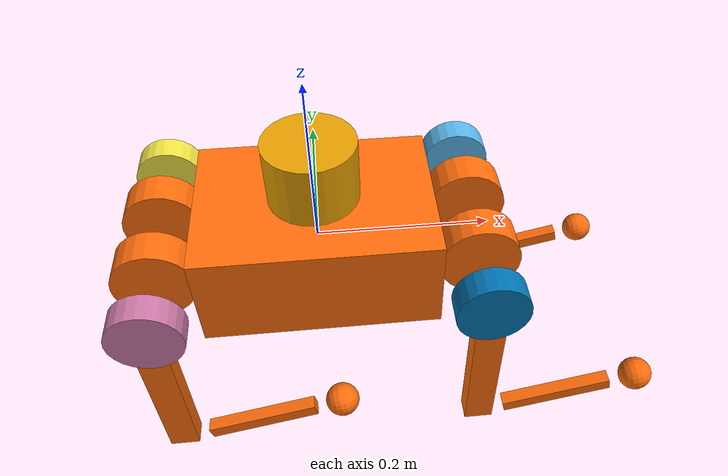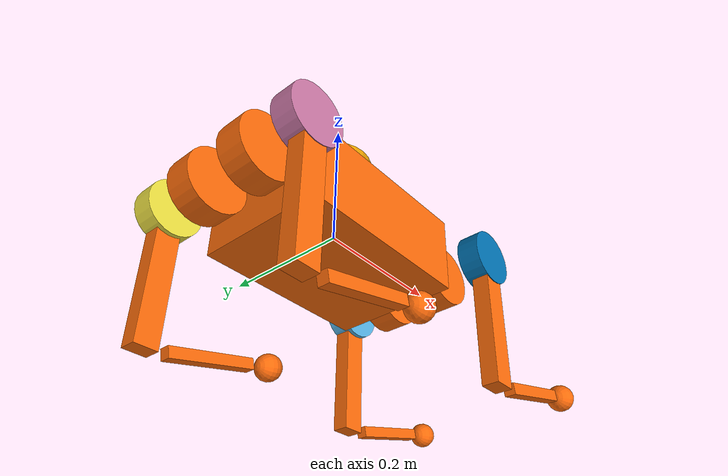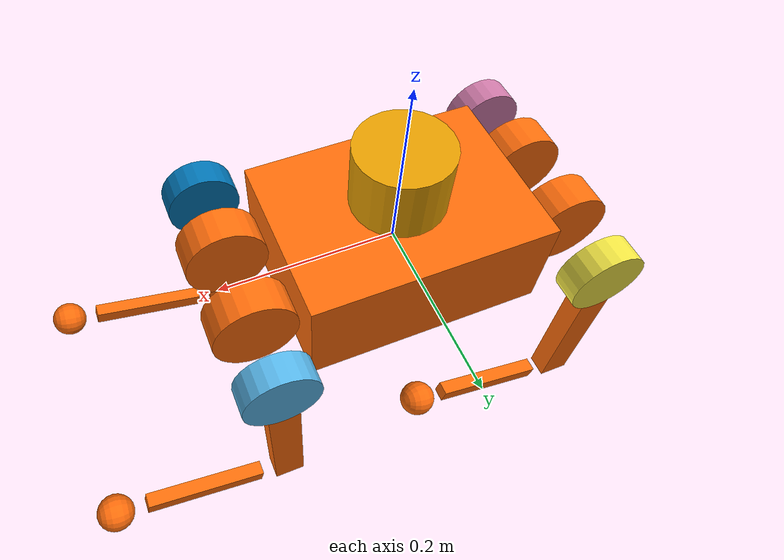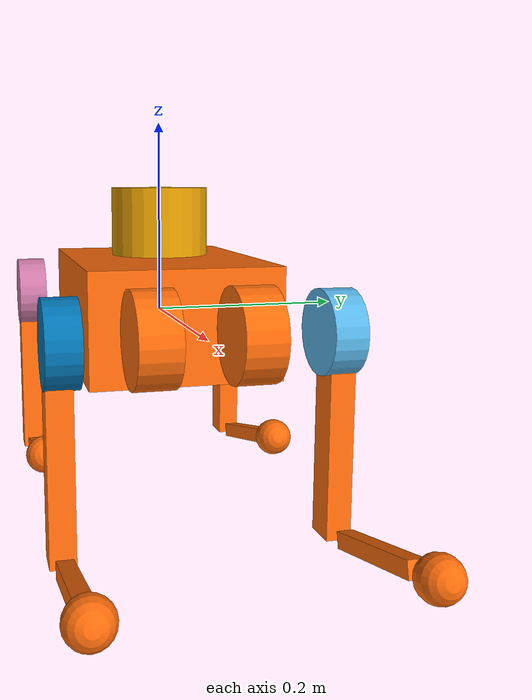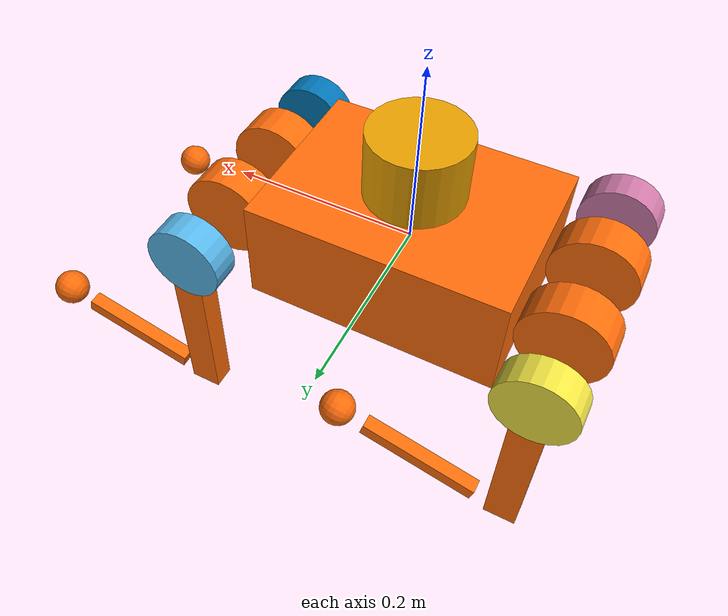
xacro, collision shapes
<?xml version="1.0"?>

<robot name="a1" xmlns:xacro="http://www.ros.org/wiki/xacro">

    <xacro:arg name="DEBUG" default="false"/>

    <xacro:include filename="$(find a1_description)/xacro/const.xacro"/>
    <xacro:include filename="$(find a1_description)/xacro/materials.xacro"/>
    <xacro:include filename="$(find a1_description)/xacro/leg.xacro"/>
    <xacro:include filename="$(find a1_description)/xacro/gazebo.xacro"/>

    <!-- Debug mode will hung up the robot, use "true" or "false" to switch it. -->
    <xacro:if value="$(arg DEBUG)">
        <link name="world"/>
        <joint name="base_static_joint" type="fixed">
            <origin rpy="0 0 0" xyz="0 0 0"/>
            <parent link="world"/>
            <child link="base_link"/>
        </joint>
    </xacro:if>

    <link name="base_link">
        <visual>
            <origin rpy="0 0 0" xyz="0 0 0"/>
            <geometry>
                <box size="0.001 0.001 0.001"/>
            </geometry>
        </visual>
    </link>

    <joint name="floating_base" type="fixed">
        <origin rpy="0 0 0" xyz="0 0 0"/>
        <parent link="base_link"/>
        <child link="trunk"/>
    </joint>

    <link name="trunk">
        <visual>
            <origin rpy="0 0 0" xyz="0 0 0"/>
            <geometry>
                <mesh filename="package://a1_description/meshes/trunk.dae" scale="1 1 1"/>
            </geometry>
            <material name="orange"/>
        </visual>
        <collision>
            <origin rpy="0 0 0" xyz="0 0 0"/>
            <geometry>
                <box size="${trunk_length} ${trunk_width} ${trunk_height}"/>
            </geometry>
        </collision>
        <inertial>
            <origin rpy="0 0 0" xyz="${trunk_com_x} ${trunk_com_y} ${trunk_com_z}"/>
            <mass value="${trunk_mass}"/>
            <inertia
                ixx="${trunk_ixx}" ixy="${trunk_ixy}" ixz="${trunk_ixz}"
                iyy="${trunk_iyy}" iyz="${trunk_iyz}"
                izz="${trunk_izz}"/>
        </inertial>
    </link>

    <joint name="imu_joint" type="fixed">
        <parent link="trunk"/>
        <child link="imu_link"/>
        <origin rpy="0 0 0" xyz="0 0 0"/>
    </joint>

    <link name="imu_link">
        <inertial>
            <mass value="0.001"/>
            <origin rpy="0 0 0" xyz="0 0 0"/>
            <inertia ixx="0.0001" ixy="0" ixz="0" iyy="0.0001" iyz="0" izz="0.0001"/>
        </inertial>
        <visual>
            <origin rpy="0 0 0" xyz="0 0 0"/>
            <geometry>
                <box size="0.001 0.001 0.001"/>
            </geometry>
            <material name="red"/>
        </visual>
        <collision>
            <origin rpy="0 0 0" xyz="0 0 0"/>
            <geometry>
                <box size=".001 .001 .001"/>
            </geometry>
        </collision>
    </link>

    <xacro:leg name="FR" mirror="-1" mirror_dae="False" front_hind="1" front_hind_dae="True">
        <origin rpy="0 0 0" xyz="${leg_offset_x} ${-leg_offset_y} 0"/>
    </xacro:leg>

    <xacro:leg name="FL" mirror="1" mirror_dae="True" front_hind="1" front_hind_dae="True">
        <origin rpy="0 0 0" xyz="${leg_offset_x} ${leg_offset_y} 0"/>
    </xacro:leg>

    <xacro:leg name="RR" mirror="-1" mirror_dae="False" front_hind="-1" front_hind_dae="False">
        <origin rpy="0 0 0" xyz="${-leg_offset_x} ${-leg_offset_y} 0"/>
    </xacro:leg>

    <xacro:leg name="RL" mirror="1" mirror_dae="True" front_hind="-1" front_hind_dae="False">
        <origin rpy="0 0 0" xyz="${-leg_offset_x} ${leg_offset_y} 0"/>
    </xacro:leg>

    <gazebo>
        <plugin name="p3d_base_controller" filename="libgazebo_ros_p3d.so">
            <alwaysOn>true</alwaysOn>
            <updateRate>50.0</updateRate>
            <bodyName>base_link</bodyName>
            <topicName>ground_truth/state</topicName>
            <gaussianNoise>0.01</gaussianNoise>
            <frameName>world</frameName>
            <xyzOffsets>0 0 0</xyzOffsets>
            <rpyOffsets>0 0 0</rpyOffsets>
        </plugin>
    </gazebo>

    <xacro:include filename="$(find a1_description)/xacro/SensorHeadForUnitreeA1.urdf.xacro"/>
	<xacro:sensor_head parent="base_link" name="Sensor_Head">
		<origin xyz="0.0 0 0.03" rpy="0 0 0" />
	</xacro:sensor_head>

</robot>

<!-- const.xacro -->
<robot name="a1_description" xmlns:xacro="http://www.ros.org/wiki/xacro">

    <!-- Constants for robot dimensions -->
    <xacro:property name="PI" value="3.1415926535897931"/>
    <xacro:property name="stick_mass" value="0.00001"/>

    <!-- simplified collision value -->
    <xacro:property name="trunk_width" value="0.194"/>
    <xacro:property name="trunk_length" value="0.267"/>
    <xacro:property name="trunk_height" value="0.114"/>
    <xacro:property name="hip_radius" value="0.046"/>
    <xacro:property name="hip_length" value="0.04"/>
    <xacro:property name="thigh_shoulder_radius" value="0.041"/>
    <xacro:property name="thigh_shoulder_length" value="0.032"/>
    <xacro:property name="thigh_width" value="0.0245"/>
    <xacro:property name="thigh_height" value="0.034"/>
    <xacro:property name="calf_width" value="0.016"/>
    <xacro:property name="calf_height" value="0.016"/>
    <xacro:property name="foot_radius" value="0.02"/>
    <xacro:property name="stick_radius" value="0.01"/>
    <xacro:property name="stick_length" value="0.2"/>

    <!-- kinematic value -->
    <xacro:property name="thigh_offset" value="0.0838"/>
    <xacro:property name="thigh_length" value="0.2"/>
    <xacro:property name="calf_length" value="0.2"/>

    <!-- leg offset from trunk center value -->
    <xacro:property name="leg_offset_x" value="0.1805"/>
    <xacro:property name="leg_offset_y" value="0.047"/>
    <xacro:property name="trunk_offset_z" value="0.01675"/>
    <xacro:property name="hip_offset" value="0.065"/>

    <!-- joint limits -->
    <xacro:property name="damping" value="0.3"/>
    <xacro:property name="friction" value="0.2"/>
    <xacro:property name="hip_max" value="46"/>
    <xacro:property name="hip_min" value="-46"/>
    <xacro:property name="hip_velocity_max" value="21"/>
    <xacro:property name="hip_torque_max" value="33.5"/>
    <xacro:property name="thigh_max" value="240"/>
    <xacro:property name="thigh_min" value="-60"/>
    <xacro:property name="thigh_velocity_max" value="21"/>
    <xacro:property name="thigh_torque_max" value="33.5"/>
    <xacro:property name="calf_max" value="-52.5"/>
    <xacro:property name="calf_min" value="-154.5"/>
    <xacro:property name="calf_velocity_max" value="21"/>
    <xacro:property name="calf_torque_max" value="33.5"/>

    <!-- dynamics inertial value -->
    <!-- trunk -->
    <xacro:property name="trunk_mass" value="6.0"/>
    <xacro:property name="trunk_com_x" value="0.0000"/>
    <xacro:property name="trunk_com_y" value="0.0041"/>
    <xacro:property name="trunk_com_z" value="-0.0005"/>
    <xacro:property name="trunk_ixx" value="0.0158533"/>
    <xacro:property name="trunk_ixy" value="-0.0000366"/>
    <xacro:property name="trunk_ixz" value="-0.0000611"/>
    <xacro:property name="trunk_iyy" value="0.0377999"/>
    <xacro:property name="trunk_iyz" value="-0.0000275"/>
    <xacro:property name="trunk_izz" value="0.0456542"/>

    <!-- hip (left front) -->
    <xacro:property name="hip_mass" value="0.696"/>
    <xacro:property name="hip_com_x" value="-0.003311"/>
    <xacro:property name="hip_com_y" value="0.000635"/>
    <xacro:property name="hip_com_z" value="0.000031"/>
    <xacro:property name="hip_ixx" value="0.000469246"/>
    <xacro:property name="hip_ixy" value="-0.000009409"/>
    <xacro:property name="hip_ixz" value="-0.000000342"/>
    <xacro:property name="hip_iyy" value="0.000807490"/>
    <xacro:property name="hip_iyz" value="-0.000000466"/>
    <xacro:property name="hip_izz" value="0.000552929"/>

    <!-- thigh -->
    <xacro:property name="thigh_mass" value="1.013"/>
    <xacro:property name="thigh_com_x" value="-0.003237"/>
    <xacro:property name="thigh_com_y" value="-0.022327"/>
    <xacro:property name="thigh_com_z" value="-0.027326"/>
    <xacro:property name="thigh_ixx" value="0.005529065"/>
    <xacro:property name="thigh_ixy" value="0.000004825"/>
    <xacro:property name="thigh_ixz" value="0.000343869"/>
    <xacro:property name="thigh_iyy" value="0.005139339"/>
    <xacro:property name="thigh_iyz" value="0.000022448"/>
    <xacro:property name="thigh_izz" value="0.001367788"/>

    <!-- calf -->
    <xacro:property name="calf_mass" value="0.166"/>
    <xacro:property name="calf_com_x" value="0.006435"/>
    <xacro:property name="calf_com_y" value="0.0"/>
    <xacro:property name="calf_com_z" value="-0.107388"/>
    <xacro:property name="calf_ixx" value="0.002997972"/>
    <xacro:property name="calf_ixy" value="0.0"/>
    <xacro:property name="calf_ixz" value="-0.000141163"/>
    <xacro:property name="calf_iyy" value="0.003014022"/>
    <xacro:property name="calf_iyz" value="0.0"/>
    <xacro:property name="calf_izz" value="0.000032426"/>

    <!-- foot -->
    <xacro:property name="foot_mass" value="0.06"/>
    <xacro:property name="foot_mu" value="0.6"/>

    <xacro:property name="kp" value="100"/>
    <xacro:property name="kd" value="1"/>

</robot>

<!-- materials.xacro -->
<robot>

    <material name="black">
        <color rgba="0.0 0.0 0.0 1.0"/>
    </material>

    <material name="blue">
        <color rgba="0.0 0.0 0.8 1.0"/>
    </material>

    <material name="green">
        <color rgba="0.0 0.8 0.0 1.0"/>
    </material>

    <material name="grey">
        <color rgba="0.2 0.2 0.2 1.0"/>
    </material>

    <material name="silver">
        <color rgba="${233/255} ${233/255} ${216/255} 1.0"/>
    </material>

    <material name="orange">
        <color rgba="${255/255} ${108/255} ${10/255} 1.0"/>
    </material>

    <material name="brown">
        <color rgba="${222/255} ${207/255} ${195/255} 1.0"/>
    </material>

    <material name="red">
        <color rgba="0.8 0.0 0.0 1.0"/>
    </material>

    <material name="white">
        <color rgba="1.0 1.0 1.0 1.0"/>
    </material>

</robot>

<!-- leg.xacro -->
<robot xmlns:xacro="http://www.ros.org/wiki/xacro">

    <xacro:include filename="$(find a1_description)/xacro/transmission.xacro"/>

    <xacro:macro name="leg" params="name mirror mirror_dae front_hind front_hind_dae *origin">

        <joint name="${name}_hip_joint" type="revolute">
            <xacro:insert_block name="origin"/>
            <parent link="trunk"/>
            <child link="${name}_hip"/>
            <axis xyz="1 0 0"/>
            <dynamics damping="${damping}" friction="${friction}"/>
            <xacro:if value="${(mirror_dae == True)}">
                <limit effort="${hip_torque_max}" velocity="${hip_velocity_max}" lower="${hip_min*PI/180.0}" upper="${hip_max*PI/180.0}"/>
            </xacro:if>
            <xacro:if value="${(mirror_dae == False)}">
                <limit effort="${hip_torque_max}" velocity="${hip_velocity_max}" lower="${-hip_max*PI/180.0}" upper="${-hip_min*PI/180.0}"/>
            </xacro:if>
        </joint>

        <link name="${name}_hip">
            <visual>
                <xacro:if value="${(mirror_dae == True) and (front_hind_dae == True)}">
                    <origin rpy="0 0 0" xyz="0 0 0"/>
                </xacro:if>
                <xacro:if value="${(mirror_dae == False) and (front_hind_dae == True)}">
                    <origin rpy="${PI} 0 0" xyz="0 0 0"/>
                </xacro:if>
                <xacro:if value="${(mirror_dae == True) and (front_hind_dae == False)}">
                    <origin rpy="0 ${PI} 0" xyz="0 0 0"/>
                </xacro:if>
                <xacro:if value="${(mirror_dae == False) and (front_hind_dae == False)}">
                    <origin rpy="${PI} ${PI} 0" xyz="0 0 0"/>
                </xacro:if>
                <geometry>
                    <mesh filename="package://a1_description/meshes/hip.dae" scale="1 1 1"/>
                </geometry>
                <material name="orange"/>
            </visual>
            <collision>
                <origin rpy="${PI/2.0} 0 0" xyz="0 0 0"/>
                <geometry>
                    <cylinder length="${hip_length}" radius="${hip_radius}"/>
                </geometry>
            </collision>
            <inertial>
                <origin rpy="0 0 0" xyz="${hip_com_x*front_hind} ${hip_com_y*mirror} ${hip_com_z}"/>
                <mass value="${hip_mass}"/>
                <inertia
                    ixx="${hip_ixx}" ixy="${hip_ixy*mirror*front_hind}" ixz="${hip_ixz*front_hind}"
                    iyy="${hip_iyy}" iyz="${hip_iyz*mirror}"
                    izz="${hip_izz}"/>
            </inertial>
        </link>

        <joint name="${name}_hip_fixed" type="fixed">
            <origin rpy="0 0 0" xyz="0 ${(thigh_shoulder_length/2.0+hip_offset)*mirror} 0"/>
            <parent link="${name}_hip"/>
            <child link="${name}_thigh_shoulder"/>
        </joint>

        <!-- this link is only for collision -->
        <link name="${name}_thigh_shoulder">
            <collision>
                <origin rpy="${PI/2.0} 0 0" xyz="0 0 0"/>
                <geometry>
                    <cylinder length="${thigh_shoulder_length}" radius="${thigh_shoulder_radius}"/>
                </geometry>
            </collision>
        </link>

        <joint name="${name}_thigh_joint" type="revolute">
            <origin rpy="0 0 0" xyz="0 ${thigh_offset*mirror} 0"/>
            <parent link="${name}_hip"/>
            <child link="${name}_thigh"/>
            <axis xyz="0 1 0"/>
            <dynamics damping="${damping}" friction="${friction}"/>
            <limit effort="${thigh_torque_max}" velocity="${thigh_velocity_max}" lower="${thigh_min*PI/180.0}" upper="${thigh_max*PI/180.0}"/>
        </joint>r

        <link name="${name}_thigh">
            <visual>
                <origin rpy="0 0 0" xyz="0 0 0"/>
                <geometry>
                    <xacro:if value="${mirror_dae == True}">
                        <mesh filename="package://a1_description/meshes/thigh.dae" scale="1 1 1"/>
                    </xacro:if>
                    <xacro:if value="${mirror_dae == False}">
                        <mesh filename="package://a1_description/meshes/thigh_mirror.dae" scale="1 1 1"/>
                    </xacro:if>
                </geometry>
                <material name="orange"/>
            </visual>
            <collision>
                <origin rpy="0 ${PI/2.0} 0" xyz="0 0 ${-thigh_length/2.0}"/>
                <geometry>
                    <box size="${thigh_length} ${thigh_width} ${thigh_height}"/>
                </geometry>
            </collision>
            <inertial>
                <origin rpy="0 0 0" xyz="${thigh_com_x} ${thigh_com_y*mirror} ${thigh_com_z}"/>
                <mass value="${thigh_mass}"/>
                <inertia
                    ixx="${thigh_ixx}" ixy="${thigh_ixy*mirror}" ixz="${thigh_ixz}"
                    iyy="${thigh_iyy}" iyz="${thigh_iyz*mirror}"
                    izz="${thigh_izz}"/>
            </inertial>
        </link>

        <joint name="${name}_calf_joint" type="revolute">
            <origin rpy="0 0 0" xyz="0 0 ${-thigh_length}"/>
            <parent link="${name}_thigh"/>
            <child link="${name}_calf"/>
            <axis xyz="0 1 0"/>
            <dynamics damping="${damping}" friction="${friction}"/>
            <limit effort="${calf_torque_max}" velocity="${calf_velocity_max}" lower="${calf_min*PI/180.0}" upper="${calf_max*PI/180.0}"/>
        </joint>

        <link name="${name}_calf">
            <visual>
                <origin rpy="0 0 0" xyz="0 0 0"/>
                <geometry>
                    <mesh filename="package://a1_description/meshes/calf.dae" scale="1 1 1"/>
                </geometry>
                <material name="orange"/>
            </visual>
            <collision>
                <origin rpy="0 ${PI/2.0} 0" xyz="0 0 ${-calf_length/2.0}"/>
                <geometry>
                    <box size="${calf_length/1.5} ${calf_width} ${calf_height}"/>
                </geometry>
            </collision>
            <inertial>
                <origin rpy="0 0 0" xyz="${calf_com_x} ${calf_com_y} ${calf_com_z}"/>
                <mass value="${calf_mass}"/>
                <inertia
                    ixx="${calf_ixx}" ixy="${calf_ixy}" ixz="${calf_ixz}"
                    iyy="${calf_iyy}" iyz="${calf_iyz}"
                    izz="${calf_izz}"/>
            </inertial>
        </link>

        <joint name="${name}_foot_fixed" type="fixed">
            <origin rpy="0 0 0" xyz="0 0 ${-(calf_length)}"/>
            <parent link="${name}_calf"/>
            <child link="${name}_foot"/>
        </joint>

        <link name="${name}_foot">
            <visual>
                <origin rpy="0 0 0" xyz="0 0 0"/>
                <geometry>
                    <sphere radius="${foot_radius-0.01}"/>
                </geometry>
                <material name="orange"/>
            </visual>
            <collision>
                <origin rpy="0 0 0" xyz="0 0 0"/>
                <geometry>
                    <sphere radius="${foot_radius}"/>
                </geometry>
            </collision>
            <inertial>
                <mass value="${foot_mass}"/>
                <inertia
                    ixx="${(2*foot_mass)/5.0*(foot_radius*foot_radius)}" ixy="0.0" ixz="0.0"
                    iyy="${(2*foot_mass)/5.0*(foot_radius*foot_radius)}" iyz="0.0"
                    izz="${(2*foot_mass)/5.0*(foot_radius*foot_radius)}"/>
            </inertial>
        </link>

        <xacro:leg_transmission name="${name}"/>
    </xacro:macro>
</robot>

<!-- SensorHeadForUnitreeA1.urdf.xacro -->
<robot xmlns:xacro="http://www.ros.org/wiki/xacro" name="sensor_head">

	<xacro:macro name="sensor_head" params="*origin parent:=base_link name:=sensor_head">
		<joint name="${name}_base_mount_joint" type="fixed">
			<xacro:insert_block name="origin" />
			<parent link="${parent}"/>
			<child link="${name}_base_link"/>
		</joint>

		<link name="${name}_base_link">
			<inertial>
				<mass value="0.000000001" />
				<origin xyz="0 0 0" rpy="0 0 0"/>
				<inertia ixx="0" ixy="0" ixz="0" iyy="0" iyz="0" izz="0" />
			</inertial>
		</link>

		<xacro:arg name="gpu" default="true"/>

		<xacro:include filename="$(find lidar_description)/urdf/VLP-16-ForUnitreeA1.urdf.xacro"/>
		<xacro:VLP-16 parent="${name}_base_link" name="${name}_Top_Velodyne" topic="${name}_Top_Velodyne_Points" hz="10" lasers="32" samples="440" gpu="$(arg gpu)" collision_range="0.2" min_range="0.39">
			<origin xyz="0.00 0 0.03" rpy="0 0 0" />
		</xacro:VLP-16>

	</xacro:macro>
</robot>

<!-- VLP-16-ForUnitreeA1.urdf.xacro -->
<robot xmlns:xacro="http://www.ros.org/wiki/xacro" name="VLP-16">
  <xacro:property name="M_PI" value="3.1415926535897931" />
  <xacro:macro name="VLP-16" params="*origin parent:=base_link name:=velodyne topic:=/velodyne_points hz:=10 lasers:=16 samples:=1875 collision_range:=0.8 min_range:=0.9 max_range:=130.0 noise:=0.008 min_angle:=-${M_PI} max_angle:=${M_PI} gpu:=false organize_pointcloud:=false">

    <joint name="${name}_base_mount_joint" type="fixed">
      <xacro:insert_block name="origin" />
      <parent link="${parent}"/>
      <child link="${name}_base_link"/>
    </joint>

    <link name="${name}_base_link">
      <inertial>
        <mass value="0.0000083"/>
        <origin xyz="0 0 0.03585"/>
        <inertia ixx="${(0.0000083 * (3.0*0.0516*0.0516 + 0.0717*0.0717)) / 12.0}" ixy="0" ixz="0"
          iyy="${(0.0000083 * (3.0*0.0516*0.0516 + 0.0717*0.0717)) / 12.0}" iyz="0"
          izz="${0.5 * 0.0000083 * (0.0516*0.0516)}"/>
      </inertial>
      <visual>
        <geometry>
          <mesh filename="package://lidar_description/meshes/VLP-16/VLP-16_base_1.dae" />
        </geometry>
      </visual>
      <visual>
        <geometry>
          <mesh filename="package://lidar_description/meshes/VLP-16/VLP-16_base_2.dae" />
        </geometry>
      </visual>
      <collision>
        <origin rpy="0 0 0" xyz="0 0 0.03585"/>
        <geometry>
          <cylinder radius="0.0516" length="0.0717"/>
        </geometry>
      </collision>
    </link>

    <joint name="${name}_base_scan_joint" type="fixed" >
      <origin xyz="0 0 0.0377" rpy="0 0 0" />
      <parent link="${name}_base_link" />
      <child link="${name}"/>
    </joint>

    <link name="${name}">
      <inertial>
        <mass value="0.0000001"/>
        <origin xyz="0 0 0"/>
        <inertia ixx="1e-12" ixy="0" ixz="0" iyy="1e-12" iyz="0" izz="1e-12"/>
      </inertial>
      <visual>
        <origin xyz="0 0 -0.0377" />
        <geometry>
          <mesh filename="package://lidar_description/meshes/VLP-16/VLP-16_scan.dae" />
        </geometry>
      </visual>
    </link>

    <!-- Gazebo requires the velodyne_gazebo_plugins package -->
    <gazebo reference="${name}">
      <xacro:if value="${gpu}">
        <sensor type="gpu_ray" name="${name}-VLP16">
          <pose>0 0 0 0 0 0</pose>
          <visualize>false</visualize>
          <update_rate>${hz}</update_rate>
          <ray>
            <scan>
              <horizontal>
                <samples>${samples}</samples>
                <resolution>1</resolution>
                <min_angle>${min_angle}</min_angle>
                <max_angle>${max_angle}</max_angle>
              </horizontal>
              <vertical>
                <samples>${lasers}</samples>
                <resolution>1</resolution>
                <min_angle>-${16.611*M_PI/180.0}</min_angle>
                <max_angle> ${16.611*M_PI/180.0}</max_angle>
              </vertical>
            </scan>
            <range>
              <min>${collision_range}</min>
              <max>${max_range+1}</max>
              <resolution>0.001</resolution>
            </range>
            <noise>
              <type>gaussian</type>
              <mean>0.0</mean>
              <stddev>0.0</stddev>
            </noise>
          </ray>
          <plugin name="gazebo_ros_laser_controller" filename="libgazebo_ros_lidar_gpu.so">
            <topicName>${topic}</topicName>
            <frameName>${name}</frameName>
            <min_range>${min_range}</min_range>
            <max_range>${max_range}</max_range>
            <gaussianNoise>${noise}</gaussianNoise>
            <organizePointcloud>${organize_pointcloud}</organizePointcloud>
          </plugin>
        </sensor>
      </xacro:if>
      <xacro:unless value="${gpu}">
        <sensor type="ray" name="${name}-VLP16">
          <pose>0 0 0 0 0 0</pose>
          <visualize>false</visualize>
          <update_rate>${hz}</update_rate>
          <ray>
            <scan>
              <horizontal>
                <samples>${samples}</samples>
                <resolution>1</resolution>
                <min_angle>${min_angle}</min_angle>
                <max_angle>${max_angle}</max_angle>
              </horizontal>
              <vertical>
                <samples>${lasers}</samples>
                <resolution>1</resolution>
                <min_angle>-${16.611*M_PI/180.0}</min_angle>
                <max_angle> ${16.611*M_PI/180.0}</max_angle>
              </vertical>
            </scan>
            <range>
              <min>${collision_range}</min>
              <max>${max_range+1}</max>
              <resolution>0.001</resolution>
            </range>
            <noise>
              <type>gaussian</type>
              <mean>0.0</mean>
              <stddev>0.0</stddev>
            </noise>
          </ray>
          <plugin name="gazebo_ros_laser_controller" filename="libgazebo_ros_lidar.so">
            <topicName>${topic}</topicName>
            <frameName>${name}</frameName>
            <min_range>${min_range}</min_range>
            <max_range>${max_range}</max_range>
            <gaussianNoise>${noise}</gaussianNoise>
            <organizePointcloud>${organize_pointcloud}</organizePointcloud>
          </plugin>
        </sensor>
      </xacro:unless>
    </gazebo>

  </xacro:macro>
</robot>
